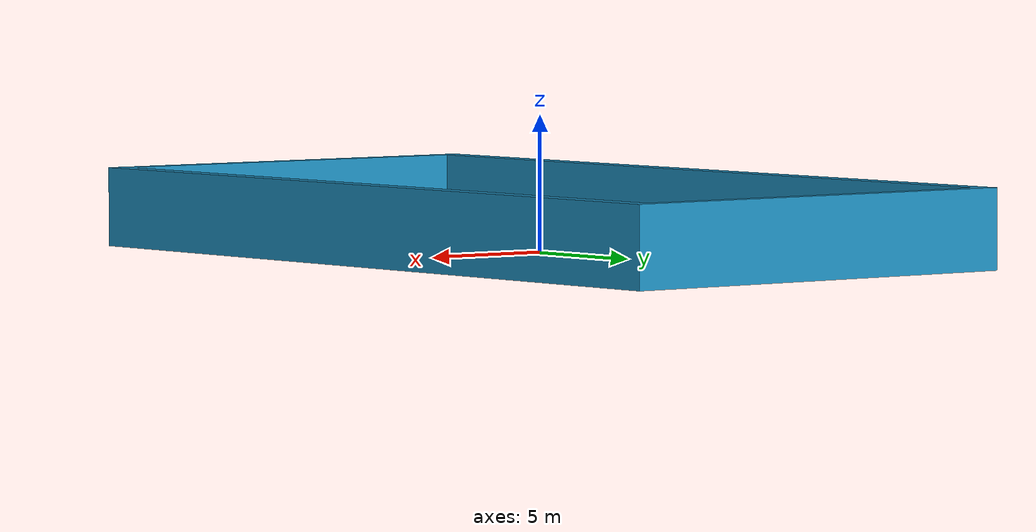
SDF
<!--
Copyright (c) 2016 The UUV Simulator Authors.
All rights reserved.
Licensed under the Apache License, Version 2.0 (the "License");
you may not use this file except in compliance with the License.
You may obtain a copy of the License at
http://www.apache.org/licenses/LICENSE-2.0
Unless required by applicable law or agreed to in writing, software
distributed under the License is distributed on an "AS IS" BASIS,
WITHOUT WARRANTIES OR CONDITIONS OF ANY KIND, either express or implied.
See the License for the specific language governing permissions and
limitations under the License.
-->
<?xml version="1.0" ?>
<sdf version="1.7">
  <model name="pool">
    <static>true</static>
    <link name="link">
      <collision name="pool_collision">
        <scale>3 3 3</scale>
        <pose>0 0 0 0 0 0</pose>
        <geometry>
          <mesh>
            <uri>models://pool/pool.dae</uri>
          </mesh>
        </geometry>
      </collision>
      <visual name="pool_visual">
        <scale>3 3 3</scale>
        <pose>0 0 0 0 0 0</pose>
        <geometry>
          <mesh>
            <uri>models://pool/pool.dae</uri>
          </mesh>
        </geometry>
        <material>
          <ambient>0.11 0.55 0.74 1</ambient>
          <diffuse>0.11 0.55 0.74 1</diffuse>
          <specular>0.1 0.1 0.1 1</specular>
          <emissive>0.11 0.55 0.74 1</emissive>
        </material>
      </visual>
    </link>
  </model>
</sdf>
